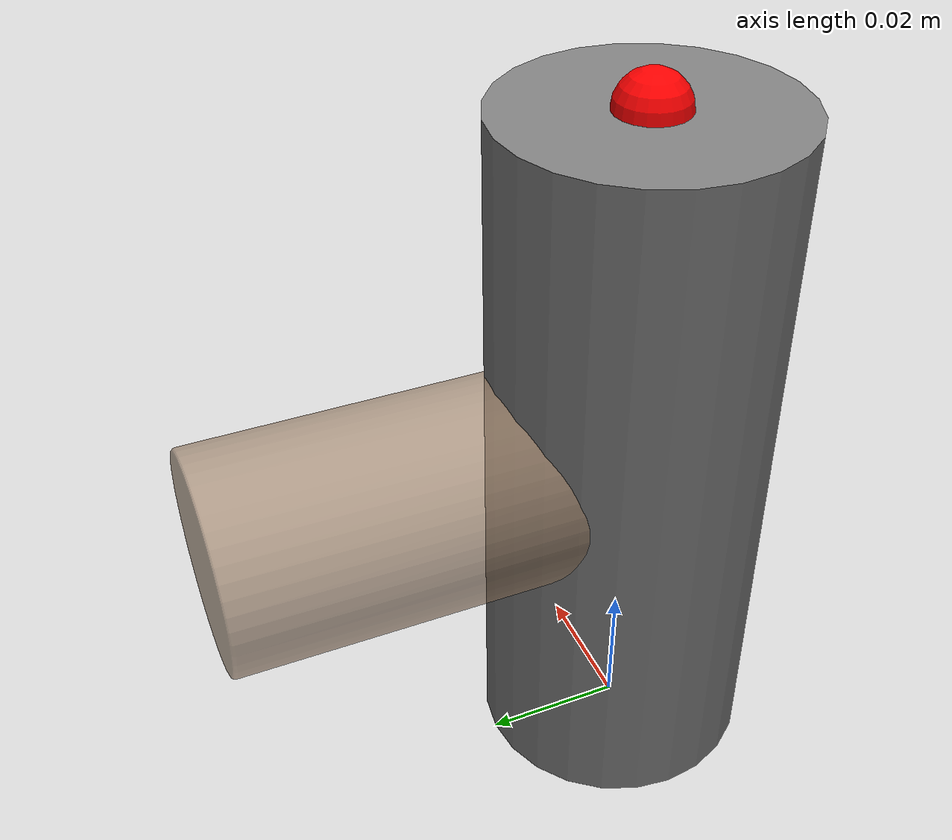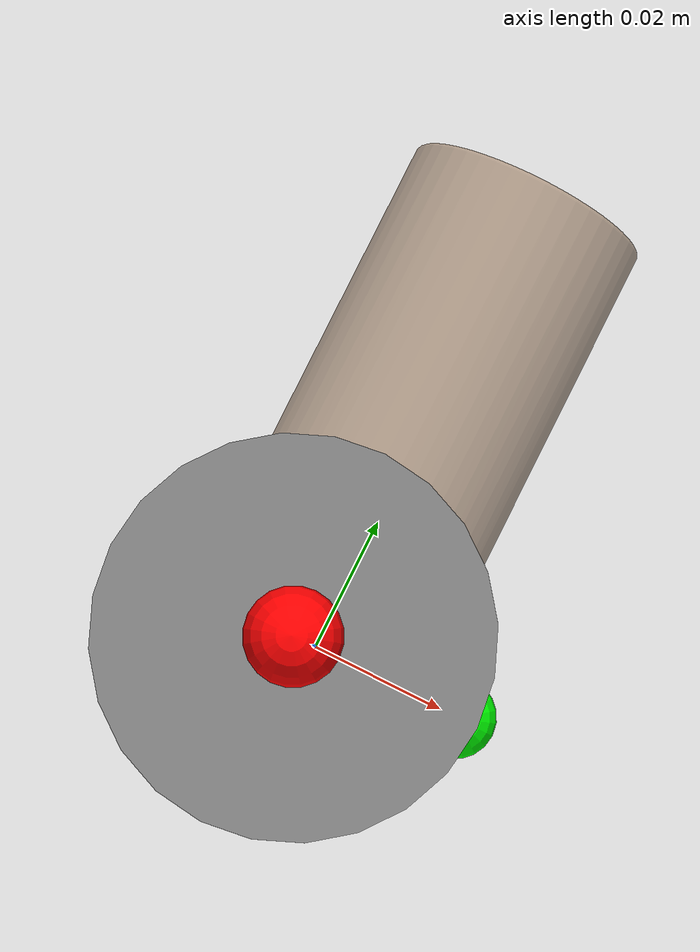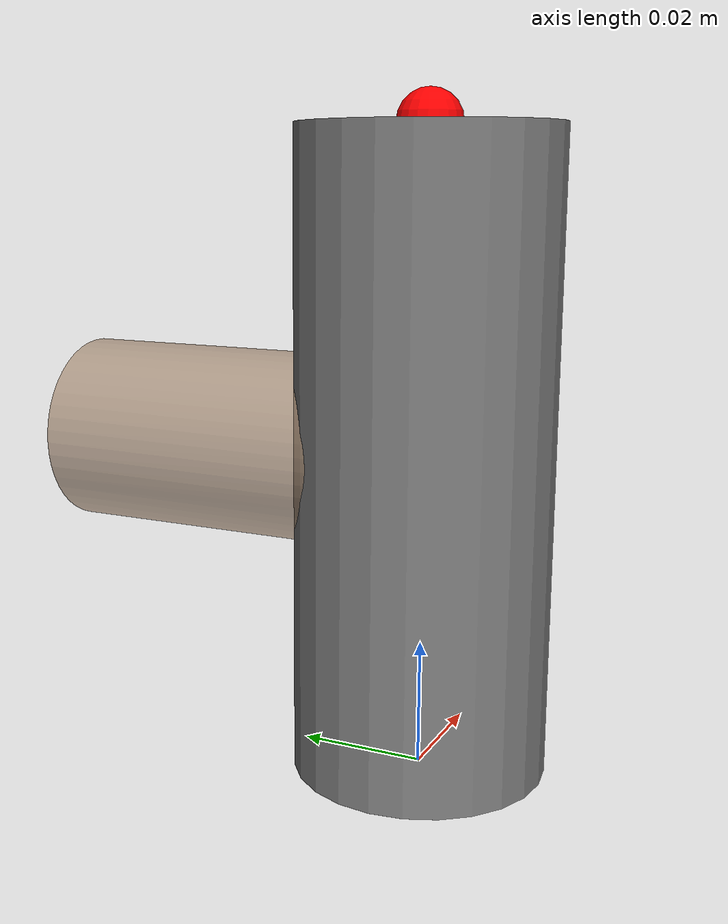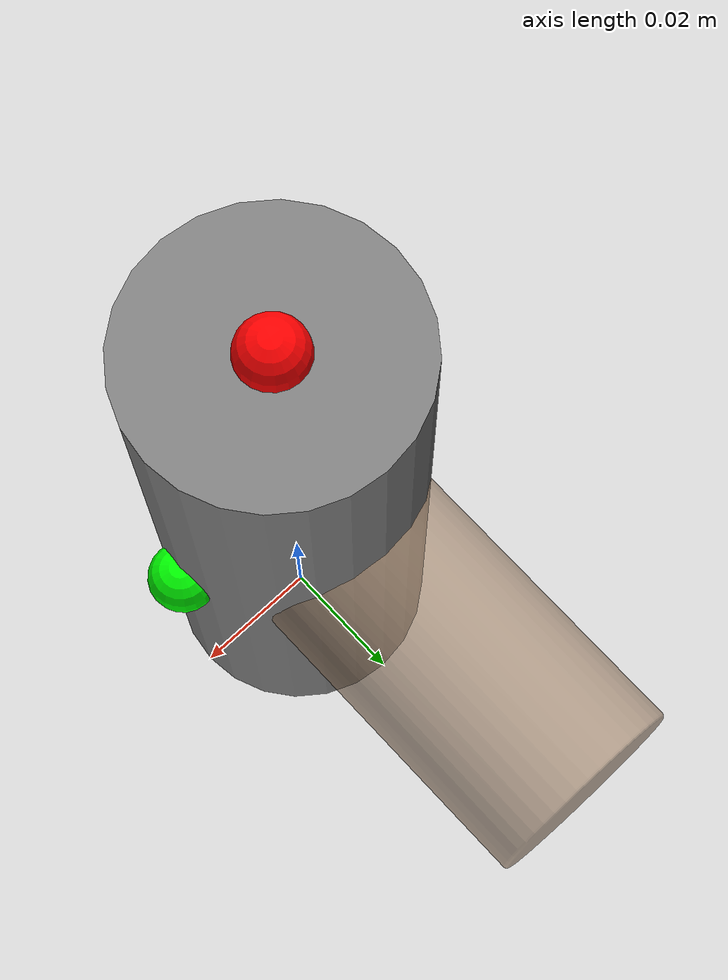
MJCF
<?xml version='1.0' encoding='utf8'?>
<mujoco model="cylinder_model">
    <compiler angle="degree" coordinate="local" />
    <option timestep="0.01" gravity="0 0 -9.81" />
    <asset>
        <mesh name="cylinder_vis" file="visual/cylinder.stl" scale="0.001 0.001 0.001" />
        <material name="mat" rgba="0.65 0.54 0.44 0.7" />
    </asset>
    <worldbody>
        <body name="object" pos="0 0 0.05">

            <geom name="cylinder_coll" type="cylinder" size="0.02 0.05" mass="0.1" group="0" />

            <geom name="cylinder_vis" type="mesh" mesh="cylinder_vis" material="mat" conaffinity="0" contype="0" group="1" />

            <site name="bottom_site" pos="0 0 -0.05" size="0.005" rgba="0 0 1 1" />
            <site name="top_site" pos="0 0 0.05" size="0.005" rgba="1 0 0 1" />
            <site name="horizontal_radius_site" pos="0.02 0 0" size="0.005" rgba="0 1 0 1" />
        </body>
    </worldbody>
</mujoco>
